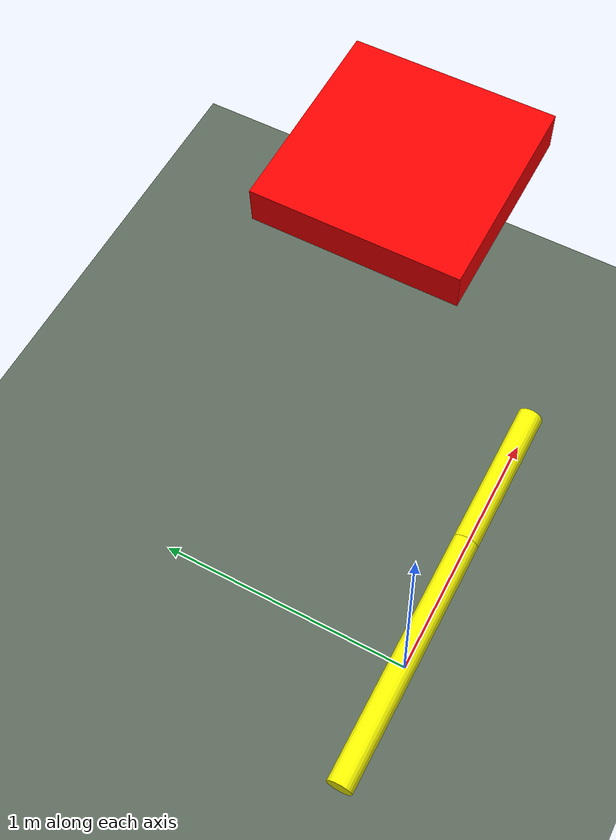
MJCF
<mujoco>
<option timestep="0.005" gravity="0 0 -9.81" integrator="RK4">
    <flag energy="enable" contact="enable" sensornoise="enable"/>
</option>
  <asset>
    <texture name="grid" type="2d" builtin="checker" rgb1=".5 .5 .3"
     rgb2=".2 .3 .4" width="300" height="300"/>
    <material name="grid" texture="grid" texrepeat="8 8" reflectance=".2"/>
  </asset>

  <worldbody>
  <light diffuse="0.5 0.5 0.5" pos="0 0 10" dir="0 0 -1"/>
  <camera pos="-0.225 -3.653 6.399" xyaxes="0.999 0.044 0.000 -0.036 0.816 0.577"/>
  <geom type="plane" size="2 2 0.1" material="grid"/>
     <body name="box_body" pos="0 0 0.1" euler="0 90 0">
      <joint name="q_0" type="hinge" pos ="0 0 -0.5" axis= "-1 0 0" damping="0.4" frictionloss="0.1"/>
      <geom name="box_geo" type="cylinder" size="0.05 0.5" rgba="1 1 0 1" mass="1"/>
        <body name="box_arm" pos="0 0 0.8" euler="0 0 0">
        <joint name="q_1" type="hinge" pos ="0 0 -0.3" axis= "-1 0 0" damping="0.1" frictionloss="0.05"/>
        <geom name="box_arm" type="cylinder" size="0.05 0.3" rgba="1 1 0 1" mass="1"/>
      </body>
      </body>
    <body name="box_and_sphere" pos="2 1 0.09">
      <freejoint/>
      <geom name="red_box" type="box" size=".5 .5 .1" rgba="1 0 0 1" mass="2"/>
    </body>
  </worldbody>
  <actuator>
    <motor joint="q_0" name="torque_0" gear="1" ctrllimited="true" ctrlrange="-100 100"/>
    <position name="position_servo_0" joint="q_0" kp="0"/>
    <velocity name="velocity_servo_0" joint="q_0" kv="0"/>

    <motor joint="q_1" name="torque_1" gear="1" ctrllimited="true" ctrlrange="-100 100"/>
    <position name="position_servo_1" joint="q_1" kp="0"/>
    <velocity name="velocity_servo_1" joint="q_1" kv="0"/>
    </actuator>
  <sensor>
  <jointpos name="q_0" joint="q_0" noise="0.05"/>
  <jointpos name="q_1" joint="q_1" noise="0.05"/>
  <jointvel name="q_0p" joint="q_0" noise="0.01"/>
  <jointvel name="q_1p" joint="q_1" noise="0.01"/>
  <framepos name="box_pos" objtype="body" objname="box_and_sphere"/>
  </sensor>
</mujoco>
